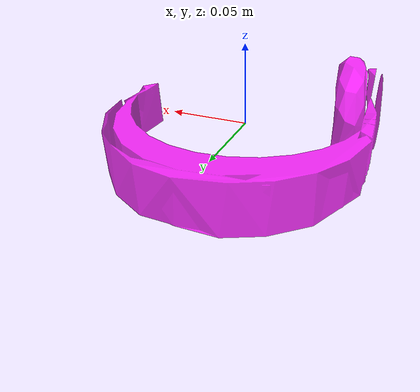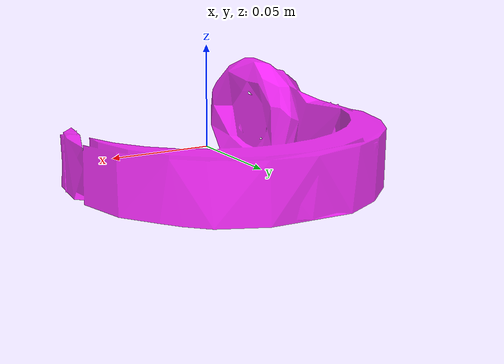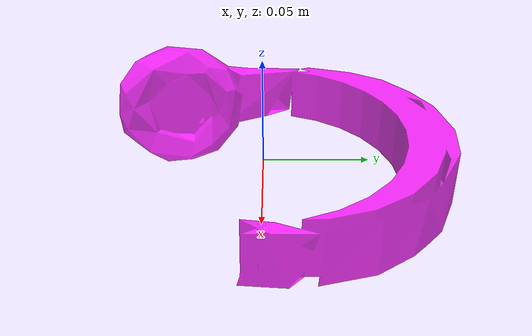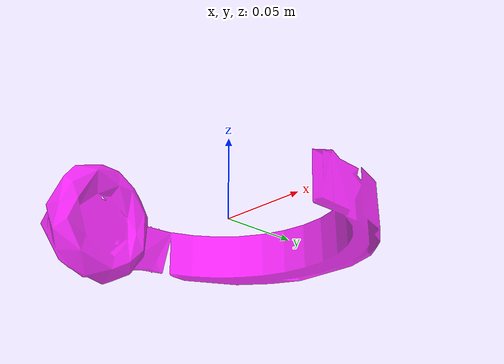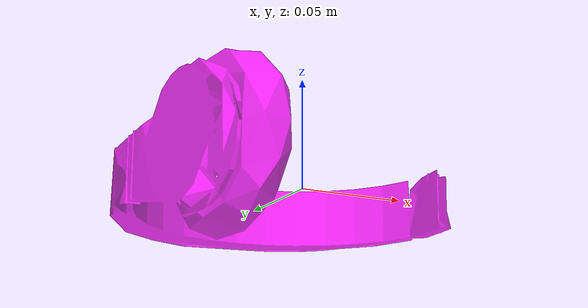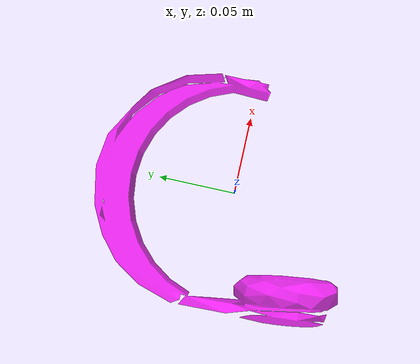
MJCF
<mujoco model="bottom_watertight_tiny">
  <default>
    <default group="2" type="mesh" contype="0" conaffinity="0">
      <geom group="2" type="mesh" contype="0" conaffinity="0"/>
    </default>
    <default group="3" type="mesh">
      <geom group="3" type="mesh"/>
    </default>
  </default>
  <asset>
    <mesh file="bottom_watertight_tiny.obj"/>
    <mesh file="bottom_watertight_tiny_collision_0.obj"/>
    <mesh file="bottom_watertight_tiny_collision_1.obj"/>
    <mesh file="bottom_watertight_tiny_collision_2.obj"/>
    <mesh file="bottom_watertight_tiny_collision_3.obj"/>
    <mesh file="bottom_watertight_tiny_collision_4.obj"/>
    <mesh file="bottom_watertight_tiny_collision_5.obj"/>
    <mesh file="bottom_watertight_tiny_collision_6.obj"/>
    <mesh file="bottom_watertight_tiny_collision_7.obj"/>
    <mesh file="bottom_watertight_tiny_collision_8.obj"/>
    <mesh file="bottom_watertight_tiny_collision_9.obj"/>
    <mesh file="bottom_watertight_tiny_collision_10.obj"/>
    <mesh file="bottom_watertight_tiny_collision_11.obj"/>
    <mesh file="bottom_watertight_tiny_collision_12.obj"/>
    <mesh file="bottom_watertight_tiny_collision_13.obj"/>
    <mesh file="bottom_watertight_tiny_collision_14.obj"/>
    <mesh file="bottom_watertight_tiny_collision_15.obj"/>
    <mesh file="bottom_watertight_tiny_collision_16.obj"/>
    <mesh file="bottom_watertight_tiny_collision_17.obj"/>
    <mesh file="bottom_watertight_tiny_collision_18.obj"/>
    <mesh file="bottom_watertight_tiny_collision_19.obj"/>
    <mesh file="bottom_watertight_tiny_collision_20.obj"/>
    <mesh file="bottom_watertight_tiny_collision_21.obj"/>
    <mesh file="bottom_watertight_tiny_collision_22.obj"/>
    <mesh file="bottom_watertight_tiny_collision_23.obj"/>
    <mesh file="bottom_watertight_tiny_collision_24.obj"/>
    <mesh file="bottom_watertight_tiny_collision_25.obj"/>
    <mesh file="bottom_watertight_tiny_collision_26.obj"/>
    <mesh file="bottom_watertight_tiny_collision_27.obj"/>
    <mesh file="bottom_watertight_tiny_collision_28.obj"/>
    <mesh file="bottom_watertight_tiny_collision_29.obj"/>
    <mesh file="bottom_watertight_tiny_collision_30.obj"/>
    <mesh file="bottom_watertight_tiny_collision_31.obj"/>
    <mesh file="bottom_watertight_tiny_collision_32.obj"/>
    <mesh file="bottom_watertight_tiny_collision_33.obj"/>
    <mesh file="bottom_watertight_tiny_collision_34.obj"/>
    <mesh file="bottom_watertight_tiny_collision_35.obj"/>
    <mesh file="bottom_watertight_tiny_collision_36.obj"/>
    <mesh file="bottom_watertight_tiny_collision_37.obj"/>
    <mesh file="bottom_watertight_tiny_collision_38.obj"/>
    <mesh file="bottom_watertight_tiny_collision_39.obj"/>
    <mesh file="bottom_watertight_tiny_collision_40.obj"/>
    <mesh file="bottom_watertight_tiny_collision_41.obj"/>
    <mesh file="bottom_watertight_tiny_collision_42.obj"/>
    <mesh file="bottom_watertight_tiny_collision_43.obj"/>
    <mesh file="bottom_watertight_tiny_collision_44.obj"/>
    <mesh file="bottom_watertight_tiny_collision_45.obj"/>
    <mesh file="bottom_watertight_tiny_collision_46.obj"/>
    <mesh file="bottom_watertight_tiny_collision_47.obj"/>
    <mesh file="bottom_watertight_tiny_collision_48.obj"/>
    <mesh file="bottom_watertight_tiny_collision_49.obj"/>
    <mesh file="bottom_watertight_tiny_collision_50.obj"/>
  </asset>
  <worldbody>
    <body name="bottom_watertight_tiny">
      <freejoint/>
      <geom mesh="bottom_watertight_tiny" group="2" type="mesh" rgba="1 0 1 0.8" contype="0" conaffinity="0"/>
      <geom mesh="bottom_watertight_tiny_collision_0" rgba="0.5501926051156634 0.7700965581708863 0.6702653098681804 1" group="3" type="mesh"/>
      <geom mesh="bottom_watertight_tiny_collision_1" rgba="0.751748671067024 0.7211728931567293 0.16063318766890156 1" group="3" type="mesh"/>
      <geom mesh="bottom_watertight_tiny_collision_2" rgba="0.99877767322943 0.8148824549544463 0.9248249225665636 1" group="3" type="mesh"/>
      <geom mesh="bottom_watertight_tiny_collision_3" rgba="0.06713649852629244 0.9971709758520707 0.3765075827093619 1" group="3" type="mesh"/>
      <geom mesh="bottom_watertight_tiny_collision_4" rgba="0.8546196208080818 0.9943106283618749 0.6963638979207901 1" group="3" type="mesh"/>
      <geom mesh="bottom_watertight_tiny_collision_5" rgba="0.7181834971239602 0.9685154935787746 0.5999948090979731 1" group="3" type="mesh"/>
      <geom mesh="bottom_watertight_tiny_collision_6" rgba="0.08144160887784468 0.11920270338466521 0.22873331856767798 1" group="3" type="mesh"/>
      <geom mesh="bottom_watertight_tiny_collision_7" rgba="0.9736752256185723 0.7109706959194267 0.1450948557799655 1" group="3" type="mesh"/>
      <geom mesh="bottom_watertight_tiny_collision_8" rgba="0.377725269878437 0.456642953789698 0.5029128424256646 1" group="3" type="mesh"/>
      <geom mesh="bottom_watertight_tiny_collision_9" rgba="0.3869526959078867 0.5411446449924062 0.6936176989299546 1" group="3" type="mesh"/>
      <geom mesh="bottom_watertight_tiny_collision_10" rgba="0.04900077238952105 0.6653185952833294 0.28408599914281263 1" group="3" type="mesh"/>
      <geom mesh="bottom_watertight_tiny_collision_11" rgba="0.7011928189374687 0.9903124102099471 0.9128070077933158 1" group="3" type="mesh"/>
      <geom mesh="bottom_watertight_tiny_collision_12" rgba="0.2633746484007182 0.26020580152674455 0.607823319248363 1" group="3" type="mesh"/>
      <geom mesh="bottom_watertight_tiny_collision_13" rgba="0.9727430143905514 0.14509488369593504 0.08909897345604056 1" group="3" type="mesh"/>
      <geom mesh="bottom_watertight_tiny_collision_14" rgba="0.15761347493732625 0.6114422034788722 0.5351688890598095 1" group="3" type="mesh"/>
      <geom mesh="bottom_watertight_tiny_collision_15" rgba="0.5182725881625152 0.5392815057177814 0.40957432536354776 1" group="3" type="mesh"/>
      <geom mesh="bottom_watertight_tiny_collision_16" rgba="0.2155797620641411 0.31798978839451253 0.29644333082664254 1" group="3" type="mesh"/>
      <geom mesh="bottom_watertight_tiny_collision_17" rgba="0.5257816676334414 0.08203246798232222 0.39443565142083903 1" group="3" type="mesh"/>
      <geom mesh="bottom_watertight_tiny_collision_18" rgba="0.7118395363616152 0.07473346081516763 0.6157036089948283 1" group="3" type="mesh"/>
      <geom mesh="bottom_watertight_tiny_collision_19" rgba="0.32897363912717625 0.26469287720742185 0.0014285619034500874 1" group="3" type="mesh"/>
      <geom mesh="bottom_watertight_tiny_collision_20" rgba="0.14591044889171667 0.9469159668161433 0.6851712534193215 1" group="3" type="mesh"/>
      <geom mesh="bottom_watertight_tiny_collision_21" rgba="0.6316177509505133 0.13486561006755515 0.6591188878843388 1" group="3" type="mesh"/>
      <geom mesh="bottom_watertight_tiny_collision_22" rgba="0.4328533028892274 0.8370304891259402 0.5518799477750544 1" group="3" type="mesh"/>
      <geom mesh="bottom_watertight_tiny_collision_23" rgba="0.003779288033436856 0.6480059423033285 0.09224797107538263 1" group="3" type="mesh"/>
      <geom mesh="bottom_watertight_tiny_collision_24" rgba="0.18294980523003024 0.621165396004188 0.7901221294814044 1" group="3" type="mesh"/>
      <geom mesh="bottom_watertight_tiny_collision_25" rgba="0.4850679656565974 0.9802263025448793 0.029903424926225552 1" group="3" type="mesh"/>
      <geom mesh="bottom_watertight_tiny_collision_26" rgba="0.8385259275638126 0.6528672367042865 0.4307587481062364 1" group="3" type="mesh"/>
      <geom mesh="bottom_watertight_tiny_collision_27" rgba="0.15234642715627933 0.5461389565986229 0.43491700482829776 1" group="3" type="mesh"/>
      <geom mesh="bottom_watertight_tiny_collision_28" rgba="0.2517004125696257 0.05355033521711117 0.7725270337935847 1" group="3" type="mesh"/>
      <geom mesh="bottom_watertight_tiny_collision_29" rgba="0.018747934393529953 0.23439088563678978 0.9177177594708412 1" group="3" type="mesh"/>
      <geom mesh="bottom_watertight_tiny_collision_30" rgba="0.542314166727266 0.19661700325069975 0.5596136654373957 1" group="3" type="mesh"/>
      <geom mesh="bottom_watertight_tiny_collision_31" rgba="0.7406528232875121 0.10461013277713915 0.8002339012440642 1" group="3" type="mesh"/>
      <geom mesh="bottom_watertight_tiny_collision_32" rgba="0.0031017340039461994 0.10306768865364291 0.9812915646191854 1" group="3" type="mesh"/>
      <geom mesh="bottom_watertight_tiny_collision_33" rgba="0.7600214310220489 0.6855531803481147 0.8425378127295388 1" group="3" type="mesh"/>
      <geom mesh="bottom_watertight_tiny_collision_34" rgba="0.287368085961313 0.6934768373282952 0.6194149666515477 1" group="3" type="mesh"/>
      <geom mesh="bottom_watertight_tiny_collision_35" rgba="0.8960549323252066 0.24112088259261433 0.2817719167011966 1" group="3" type="mesh"/>
      <geom mesh="bottom_watertight_tiny_collision_36" rgba="0.6641575482166784 0.1506886880083932 0.5221426803161049 1" group="3" type="mesh"/>
      <geom mesh="bottom_watertight_tiny_collision_37" rgba="0.47712908067222914 0.3082910846292467 0.8214154887858309 1" group="3" type="mesh"/>
      <geom mesh="bottom_watertight_tiny_collision_38" rgba="0.4993820835913729 0.18229043254196475 0.721849012706101 1" group="3" type="mesh"/>
      <geom mesh="bottom_watertight_tiny_collision_39" rgba="0.40617434176842915 0.070128774381502 0.398558893395521 1" group="3" type="mesh"/>
      <geom mesh="bottom_watertight_tiny_collision_40" rgba="0.9904312862951866 0.9273039005637304 0.20350315972388344 1" group="3" type="mesh"/>
      <geom mesh="bottom_watertight_tiny_collision_41" rgba="0.23155199623204792 0.625830419675548 0.8489155335987065 1" group="3" type="mesh"/>
      <geom mesh="bottom_watertight_tiny_collision_42" rgba="0.25185850114445607 0.7474632072604945 0.4081340031294145 1" group="3" type="mesh"/>
      <geom mesh="bottom_watertight_tiny_collision_43" rgba="0.33869173555509124 0.5739006651560425 0.6833751811696175 1" group="3" type="mesh"/>
      <geom mesh="bottom_watertight_tiny_collision_44" rgba="0.7093749163123053 0.3815069597425522 0.5541995699393512 1" group="3" type="mesh"/>
      <geom mesh="bottom_watertight_tiny_collision_45" rgba="0.6647792510059233 0.8391891084215614 0.616302040567053 1" group="3" type="mesh"/>
      <geom mesh="bottom_watertight_tiny_collision_46" rgba="0.7583346307824934 0.9808283549303795 0.7586714061540819 1" group="3" type="mesh"/>
      <geom mesh="bottom_watertight_tiny_collision_47" rgba="0.6876944180854764 0.8112721190379015 0.4344159426565075 1" group="3" type="mesh"/>
      <geom mesh="bottom_watertight_tiny_collision_48" rgba="0.1206453100361391 0.13284892687354044 0.37276524736768446 1" group="3" type="mesh"/>
      <geom mesh="bottom_watertight_tiny_collision_49" rgba="0.20556564342815098 0.21432219722986967 0.9889072086338734 1" group="3" type="mesh"/>
      <geom mesh="bottom_watertight_tiny_collision_50" rgba="0.6288890784712766 0.8454197482590479 0.021218837932070245 1" group="3" type="mesh"/>
    </body>
  </worldbody>
</mujoco>
